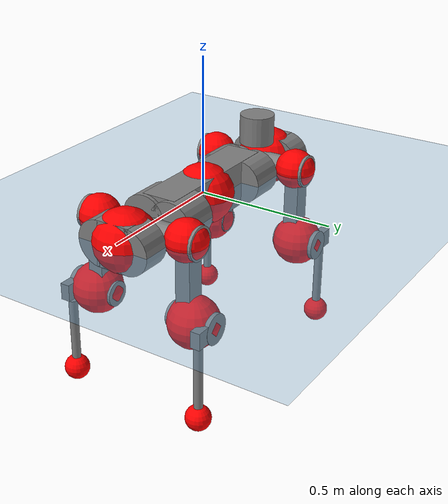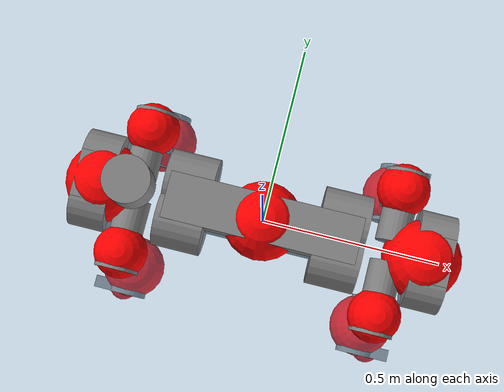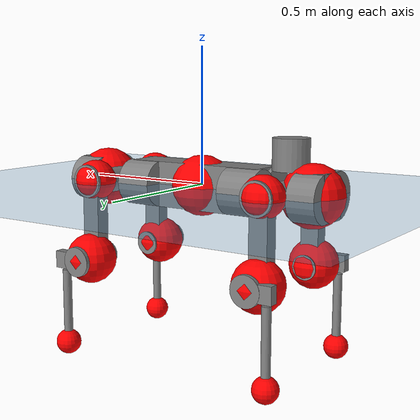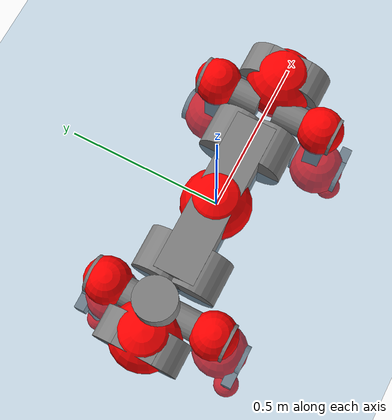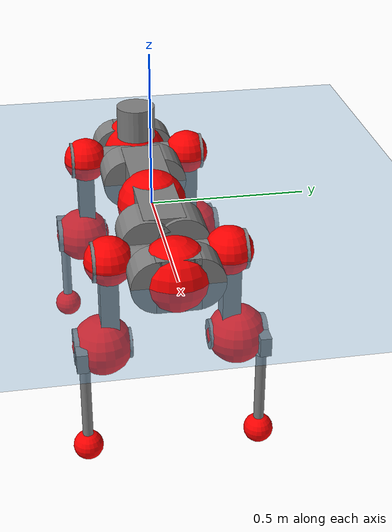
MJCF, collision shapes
<mujoco model="anymal_c">
  <compiler angle="radian" assetdir="assets" balanceinertia="true" inertiafromgeom="false"/>

  <option timestep="0.005" density="1.2" viscosity="2e-05"/>

  <size nkey="1"/>

  <visual>
    <quality shadowsize="8192"/>
    <map shadowclip="0.5"/>
  </visual>

  <default>
    <default class="/">
      <material specular="0" shininess="0.25"/>
      <geom contype="0" conaffinity="0" group="1" solref="-1000 -80"/>
      <site size="0.01 0.005 0.005" group="5"/>
      <general forcelimited="true" forcerange="-80 80" biastype="affine" gainprm="80" biasprm="0 -80 -2"/>
      <default class="anymal_c">
        <joint armature="0.01" damping="0.01" frictionloss="0.1"/>
        <default class="visual">
          <geom type="mesh" group="2"/>
          <default class="visual_zflip"/>
        </default>
        <default class="collision">
          <geom type="cylinder" group="3"/>
          <default class="foot">
            <geom size="0.03 0 0" type="sphere" condim="6" priority="1" friction="0.8 0.02 0.01" solimp="0.015 1 0.03"/>
          </default>
        </default>
      </default>
      <default class="reward_collision_sphere">
        <geom group="5" rgba="1 0 0 1"/>
      </default>
    </default>
  </default>

  <asset>
    <texture type="skybox" colorspace="auto" name="//unnamed_texture_0" builtin="gradient" rgb1="0.95 0.95 0.95" rgb2="0.95 0.95 0.95" width="100" height="600"/>
    <texture type="2d" colorspace="auto" name="texplane" builtin="checker" rgb1="0.345 0.575 0.748" rgb2="0.345 0.575 0.748" markrgb="1 1 1" width="512" height="512"/>
    <texture type="2d" colorspace="linear" name="base" file="base.png"/>
    <texture type="2d" colorspace="linear" name="top_shell" file="top_shell.png"/>
    <texture type="2d" colorspace="linear" name="bottom_shell" file="bottom_shell.png"/>
    <texture type="2d" colorspace="linear" name="remote" file="remote.png"/>
    <texture type="2d" colorspace="linear" name="hatch" file="hatch.png"/>
    <texture type="2d" colorspace="linear" name="handle" file="handle.png"/>
    <texture type="2d" colorspace="linear" name="face" file="face.png"/>
    <texture type="2d" colorspace="linear" name="battery" file="battery.png"/>
    <texture type="2d" colorspace="linear" name="lidar_cage" file="lidar_cage.png"/>
    <texture type="2d" colorspace="linear" name="depth_camera" file="depth_camera.png"/>
    <texture type="2d" colorspace="linear" name="wide_angle_camera" file="wide_angle_camera.png"/>
    <texture type="2d" colorspace="linear" name="lidar" file="lidar.png"/>
    <texture type="2d" colorspace="linear" name="drive" file="drive.png"/>
    <texture type="2d" colorspace="linear" name="hip_l" file="hip_l.png"/>
    <texture type="2d" colorspace="linear" name="shank_l" file="shank_l.png"/>
    <texture type="2d" colorspace="linear" name="foot" file="foot.png"/>
    <texture type="2d" colorspace="linear" name="thigh" file="thigh.png"/>
    <texture type="2d" colorspace="linear" name="shank_r" file="shank_r.png"/>
    <texture type="2d" colorspace="linear" name="hip_r" file="hip_r.png"/>
    <material name="MatPlane" class="/" texture="texplane" texuniform="true" texrepeat="2 2" specular="0.9" shininess="0.5"/>
    <material name="black_plastic" class="/" rgba="0.007 0.007 0.007 1"/>
    <material name="green" class="/" rgba="0.052 0.178 0.033 1"/>
    <material name="red" class="/" rgba="0.178 0.006 0.005 1"/>
    <material name="yellow" class="/" rgba="0.178 0.119 0.006 1"/>
    <material name="lwl" class="/" rgba="0.8 0.8 0.8 1"/>
    <material name="base" class="/" texture="base"/>
    <material name="top_shell" class="/" texture="top_shell"/>
    <material name="bottom_shell" class="/" texture="bottom_shell"/>
    <material name="hip_l" class="/" texture="hip_l"/>
    <material name="thigh" class="/" texture="thigh"/>
    <material name="shank_l" class="/" texture="shank_l"/>
    <material name="foot" class="/" texture="foot"/>
    <material name="hip_r" class="/" texture="hip_r"/>
    <material name="shank" class="/" texture="shank_r"/>
    <material name="hatch" class="/" texture="hatch"/>
    <material name="remote" class="/" texture="remote"/>
    <material name="handle" class="/" texture="handle"/>
    <material name="face" class="/" texture="face"/>
    <material name="depth_camera" class="/" texture="depth_camera"/>
    <material name="wide_angle_camera" class="/" texture="wide_angle_camera"/>
    <material name="battery" class="/" texture="battery"/>
    <material name="lidar_cage" class="/" texture="lidar_cage"/>
    <material name="lidar" class="/" texture="lidar"/>
    <material name="drive" class="/" texture="drive"/>
    <mesh name="base_0" class="/" file="base_0.obj"/>
    <mesh name="base_1" class="/" file="base_1.obj"/>
    <mesh name="base_2" class="/" file="base_2.obj"/>
    <mesh name="base_3" class="/" file="base_3.obj"/>
    <mesh name="base_4" class="/" file="base_4.obj"/>
    <mesh name="base_5" class="/" file="base_5.obj"/>
    <mesh name="top_shell" class="/" file="top_shell.obj"/>
    <mesh name="bottom_shell" class="/" file="bottom_shell.obj"/>
    <mesh name="remote" class="/" file="remote.obj"/>
    <mesh name="handle" class="/" file="handle.obj"/>
    <mesh name="face" class="/" file="face.obj"/>
    <mesh name="wide_angle_camera" class="/" file="wide_angle_camera.obj"/>
    <mesh name="depth_camera" class="/" file="depth_camera.obj"/>
    <mesh name="battery" class="/" file="battery.obj"/>
    <mesh name="lidar_cage" class="/" file="lidar_cage.obj"/>
    <mesh name="lidar" class="/" file="lidar.obj"/>
    <mesh name="drive" class="/" file="drive.obj"/>
    <mesh name="hip_l" class="/" file="hip_l.obj"/>
    <mesh name="thigh" class="/" file="thigh.obj"/>
    <mesh name="shank_l" class="/" file="shank_l.obj"/>
    <mesh name="foot" class="/" file="foot.obj"/>
    <mesh name="hip_r" class="/" file="hip_r.obj"/>
    <mesh name="hatch" class="/" file="hatch.obj"/>
    <mesh name="shank_r" class="/" file="shank_r.obj"/>
  </asset>

  <worldbody>
    <geom name="floor" class="/" size="100 100 0.125" type="plane" group="0" material="MatPlane"/>
    <light name="toplight_shadow" class="/" pos="0 0 5" dir="0.0990148 0.0990148 -0.990148" type="directional" ambient="0.04 0.04 0.04" diffuse="0.55 0.55 0.55" specular="0.12 0.12 0.12"/>
    <light name="toplight_fill" class="/" pos="0 0 5" dir="0.0990148 0.0990148 -0.990148" type="directional" castshadow="false" ambient="0.04 0.04 0.04" diffuse="0.3 0.3 0.3" specular="0.08 0.08 0.08"/>
    <body name="trunk" childclass="anymal_c" pos="-0.000549674 0.000285253 -0.00243264" quat="1 0.000280235 -0.000257241 -0.000139389">
      <inertial pos="-0.000384984 -0.00293382 0.0504314" quat="0.501102 0.499377 0.500103 0.499416" mass="15.8127" diaginertia="0.684042 0.181094 0.257953"/>
      <joint name="//unnamed_joint_0" type="free" armature="0" damping="0" frictionloss="0"/>
      <geom name="//unnamed_geom_1" class="visual" material="green" mesh="base_0"/>
      <geom name="//unnamed_geom_2" class="visual" material="yellow" mesh="base_1"/>
      <geom name="//unnamed_geom_3" class="visual" material="red" mesh="base_2"/>
      <geom name="//unnamed_geom_4" class="visual" material="black_plastic" mesh="base_3"/>
      <geom name="//unnamed_geom_5" class="visual" material="lwl" mesh="base_4"/>
      <geom name="//unnamed_geom_6" class="visual" material="base" mesh="base_5"/>
      <geom name="trunk_1" class="collision" size="0.271364 0.0655016 0.0842164" type="box"/>
      <geom name="trunk_2" class="collision" size="0.0842164 0.067841" pos="0.218917 0.0543117 0" quat="0.707107 0 0.707107 0"/>
      <geom name="trunk_3" class="collision" size="0.0842164 0.067841" pos="-0.218917 0.0543117 0" quat="0.707107 0 0.707107 0"/>
      <geom name="trunk_4" class="collision" size="0.0842164 0.067841" pos="0.218917 -0.0543117 0" quat="0.707107 0 0.707107 0"/>
      <geom name="trunk_5" class="collision" size="0.0842164 0.067841" pos="-0.218917 -0.0543117 0" quat="0.707107 0 0.707107 0"/>
      <geom name="//unnamed_geom_12" class="visual" material="top_shell" mesh="top_shell"/>
      <geom name="//unnamed_geom_13" class="visual" material="bottom_shell" mesh="bottom_shell"/>
      <geom name="//unnamed_geom_14" class="visual" material="remote" mesh="remote"/>
      <geom name="//unnamed_geom_15" class="visual" material="handle" mesh="handle"/>
      <geom name="//unnamed_geom_16" class="visual" pos="0.4172 0 0" quat="1 0 0 0" material="face" mesh="face"/>
      <geom name="trunk_6" class="collision" size="0.0514656 0.0655016 0.0842164" pos="0.472558 0 0" type="box"/>
      <geom name="//unnamed_geom_18" class="collision" size="0.0842164 0.0514656" pos="0.472558 0.0543117 0" quat="0.707107 0 0.707107 0"/>
      <geom name="//unnamed_geom_19" class="collision" size="0.0842164 0.0514656" pos="0.472558 -0.0543117 0" quat="0.707107 0 0.707107 0"/>
      <geom name="//unnamed_geom_20" class="visual" pos="0.464658 0 -0.0300638" quat="0.965926 0 0.258819 0" material="depth_camera" mesh="depth_camera"/>
      <geom name="//unnamed_geom_21" class="visual" pos="0.516341 0 0.0153415" material="wide_angle_camera" mesh="wide_angle_camera"/>
      <geom name="//unnamed_geom_22" class="visual_zflip" pos="-0.4172 0 0" quat="0 0 0 1" material="face" mesh="face"/>
      <geom name="trunk_7" class="collision" size="0.0514656 0.0655016 0.0842164" pos="-0.472558 0 0" quat="0 0 0 1" type="box"/>
      <geom name="//unnamed_geom_24" class="collision" size="0.0842164 0.0514656" pos="-0.472558 -0.0543117 0" quat="0 -0.707107 0 0.707107"/>
      <geom name="//unnamed_geom_25" class="collision" size="0.0842164 0.0514656" pos="-0.472558 0.0543117 0" quat="0 -0.707107 0 0.707107"/>
      <geom name="//unnamed_geom_26" class="visual" pos="-0.464658 0 -0.0300638" quat="0 -0.258819 0 0.965926" material="depth_camera" mesh="depth_camera"/>
      <geom name="//unnamed_geom_27" class="visual_zflip" pos="-0.516341 0 0.0153415" quat="0 0 0 1" material="wide_angle_camera" mesh="wide_angle_camera"/>
      <geom name="//unnamed_geom_28" class="visual" material="battery" mesh="battery"/>
      <geom name="//unnamed_geom_29" class="visual" pos="0 0.0562983 0.0296319" quat="0.683013 -0.183013 0.183013 0.683013" material="depth_camera" mesh="depth_camera"/>
      <geom name="//unnamed_geom_30" class="visual" pos="0 -0.0562983 0.0296319" quat="0.683013 0.183013 0.183013 -0.683013" material="depth_camera" mesh="depth_camera"/>
      <geom name="//unnamed_geom_31" class="visual" pos="-0.366371 0 0.0753241" quat="1 0 0 0" material="lidar_cage" mesh="lidar_cage"/>
      <geom name="trunk_8" class="collision" size="0.0655016 0.0561443" pos="-0.366371 0 0.136813"/>
      <geom name="//unnamed_geom_33" class="visual" pos="-0.366371 -9.06091e-05 0.145729" quat="0.707107 0 0 -0.707107" material="lidar" mesh="lidar"/>
      <geom name="//unnamed_geom_34" class="visual" pos="0.301853 0.0807801 -4.29419e-09" quat="0.258819 0.965926 0 0" material="drive" mesh="drive"/>
      <geom name="//unnamed_geom_35" class="visual" pos="0.301853 -0.0807801 4.29419e-09" quat="0.258819 -0.965926 0 0" material="drive" mesh="drive"/>
      <geom name="//unnamed_geom_36" class="visual" pos="-0.301853 0.0807801 4.29419e-09" quat="0 0 0.965926 -0.258819" material="drive" mesh="drive"/>
      <geom name="//unnamed_geom_37" class="visual" pos="-0.301853 -0.0807801 -4.29419e-09" quat="0 0 -0.965926 -0.258819" material="drive" mesh="drive"/>
      <geom name="//unnamed_geom_38" class="visual" pos="0.116756 0 0.0748117" quat="1 0 0 0" material="hatch" mesh="hatch"/>
      <geom name="//unnamed_geom_39" class="reward_collision_sphere" size="0.112289"/>
      <geom name="//unnamed_geom_40" class="reward_collision_sphere" size="0.112289" pos="0.452931 0 0"/>
      <geom name="//unnamed_geom_41" class="reward_collision_sphere" size="0.112289" pos="-0.452931 0 0"/>
      <site name="imu" pos="0.238245 0.0115189 0.0613208" size="0.00935738"/>
      <camera name="track" pos="0 -1.55176 0" quat="0.707107 0.707107 0 0" mode="trackcom"/>
      <camera name="ego_camera" pos="0.452931 0 -0.0409927" quat="-0.5 -0.5 0.5 0.5"/>
      <body name="LF_HIP" pos="0.301322 0.0818108 0.000790474" quat="0.259153 0.965836 0.000218902 0.000627055">
        <inertial pos="0.0598273 -0.012861 -0.00799761" quat="-0.131814 0.715615 -0.133547 0.672819" mass="2.19319" diaginertia="0.00582742 0.00137065 0.00370159"/>
        <joint name="LF_HAA" pos="0 0 0" axis="0.999872 -0.0156251 -0.00356445" range="-0.714576 0.519948" armature="0.0105854" damping="0" frictionloss="0.0985415"/>
        <geom name="//unnamed_geom_42" class="visual" pos="0 -0.000252608 4.14906e-05" quat="0.258819 -0.965926 0 0" material="hip_l" mesh="hip_l"/>
        <geom name="//unnamed_geom_43" class="visual" pos="0.0602901 -0.0701062 -0.0423171" quat="0.183013 -0.683013 0.683013 0.183013" material="drive" mesh="drive"/>
        <geom name="//unnamed_geom_44" class="collision" size="0.0467869 0.0655016" pos="0.0602901 -0.00927938 -0.00707637" quat="-0.353553 -0.612372 0.612372 -0.353553"/>
        <body name="LF_THIGH" pos="0.0603458 -0.0557591 -0.0446831" quat="0.183136 -0.68279 0.683113 0.183347">
          <inertial pos="0.0322813 0.000200784 -0.249019" quat="0.992906 -0.00373772 -0.0818163 0.0861981" mass="2.57676" diaginertia="0.0301476 0.00839428 0.00478882"/>
          <joint name="LF_HFE" pos="0 0 0" axis="0.999884 0.0118587 0.00958024" range="-3.13306 3.1163" armature="0.00890022" damping="0.0103327" frictionloss="0.0806234"/>
          <geom name="//unnamed_geom_45" class="visual" pos="0.00458867 7.23067e-06 0" quat="0.707107 0 0 -0.707107" material="thigh" mesh="thigh"/>
          <geom name="//unnamed_geom_46" class="collision" size="0.0608229 0.0374295" pos="0.0402605 0 0" quat="0.5 0.5 -0.5 -0.5"/>
          <geom name="//unnamed_geom_47" class="collision" size="0.0350902 0.0280721 0.132233" pos="0.0301954 0 -0.144821" quat="0.707107 0 0 -0.707107" type="box"/>
          <geom name="//unnamed_geom_48" class="visual" pos="0.100953 0 -0.292073" quat="1 0 0 0" material="drive" mesh="drive"/>
          <geom name="//unnamed_geom_49" class="collision" size="0.0467869 0.0655016" pos="0.0304973 0 -0.292073" quat="0.707107 0 0.707107 0"/>
          <geom name="//unnamed_geom_50" class="reward_collision_sphere" size="0.074859" pos="0.0251628 0 0"/>
          <body name="LF_SHANK" pos="0.104297 -0.00331246 -0.294785" quat="0.999999 -0.00028534 0.00139352 -9.12477e-05">
            <inertial pos="0.00637756 -0.0473509 -0.0819367" quat="0.993336 -0.11261 -0.000832647 -0.0245192" mass="0.470514" diaginertia="0.010262 0.00258237 0.00125384"/>
            <joint name="LF_KFE" pos="0 0 0" axis="1 0.000372806 3.70002e-05" range="-3.18707 3.14552" armature="0.0100361" damping="0" frictionloss="0.103591"/>
            <geom name="//unnamed_geom_51" class="visual" pos="0.00149627 0.00797816 0" quat="0.707107 0 0 -0.707107" material="shank_l" mesh="shank_l"/>
            <geom name="LF_kfe_act" class="collision" size="0.0561443 0.0187148" pos="0.0201303 0 0" quat="0.5 0.5 -0.5 -0.5"/>
            <geom name="//unnamed_geom_53" class="collision" size="0.053804 0.0315811 0.017779" pos="0.0201303 -0.0446124 0" quat="0.5 0.5 -0.5 -0.5" type="box"/>
            <geom name="//unnamed_geom_54" class="visual" pos="0.0131346 -0.0656677 -0.346358" quat="0.382683 0 0 -0.92388" material="foot" mesh="foot"/>
            <geom name="LF_calf" class="collision" size="0.0163754 0.132175" pos="0.013135 -0.0682387 -0.173179" quat="0.707107 0 0 -0.707107"/>
            <geom name="LF_foot" class="foot" size="0.0292308" pos="0.013135 -0.0682387 -0.323299" quat="0.707107 0 0 -0.707107"/>
            <geom name="//unnamed_geom_57" class="reward_collision_sphere" size="0.0935738" pos="-0.0503257 0 0"/>
            <geom name="//unnamed_geom_58" class="reward_collision_sphere" size="0.0467869" pos="0.013135 -0.0682387 -0.323299"/>
            <site name="LF_foot" class="foot" pos="0.013135 -0.0682387 -0.323299" quat="0.707107 0 0 -0.707107" size="0.00935738"/>
          </body>
        </body>
      </body>
      <body name="RF_HIP" pos="0.300449 -0.0822798 -0.00059455" quat="0.258755 -0.965943 8.17806e-05 6.09426e-06">
        <inertial pos="0.0599211 0.0130816 -0.00908214" quat="0.136589 0.677796 0.129472 0.710755" mass="2.35894" diaginertia="0.00614078 0.00145118 0.00382166"/>
        <joint name="RF_HAA" pos="0 0 0" axis="0.999994 0.00319165 0.000955842" range="-0.547181 0.702085" armature="0.00809571" damping="0.00817585" frictionloss="0.0805972"/>
        <geom name="//unnamed_geom_59" class="visual" pos="0 0.000252606 4.14905e-05" quat="0.258819 0.965926 0 0" material="hip_r" mesh="hip_r"/>
        <geom name="//unnamed_geom_60" class="visual" pos="0.0602901 0.0701062 -0.0423171" quat="0.183013 0.683013 0.683013 -0.183013" material="drive" mesh="drive"/>
        <geom name="//unnamed_geom_61" class="collision" size="0.0467869 0.0655016" pos="0.0602901 0.00927938 -0.00707637" quat="-0.353553 0.612372 0.612372 0.353553"/>
        <body name="RF_THIGH" pos="0.0599482 0.0591858 -0.0447737" quat="0.182742 0.683179 0.682869 -0.183198">
          <inertial pos="0.0312038 -0.00115965 -0.25077" quat="0.99311 -0.0177632 -0.0748401 0.0884044" mass="2.35144" diaginertia="0.0299767 0.00834445 0.00463497"/>
          <joint name="RF_HFE" pos="0 0 0" axis="0.999951 -0.00389782 0.00907528" stiffness="0.00549932" range="-3.09327 3.18719" armature="0.00938143" damping="0" frictionloss="0.103502"/>
          <geom name="//unnamed_geom_62" class="visual" pos="0.00458867 7.23067e-06 0" quat="0.707107 0 0 -0.707107" material="thigh" mesh="thigh"/>
          <geom name="//unnamed_geom_63" class="collision" size="0.0608229 0.0374295" pos="0.0402605 0 0" quat="0.5 0.5 0.5 0.5"/>
          <geom name="//unnamed_geom_64" class="collision" size="0.0350902 0.0280721 0.132233" pos="0.0301954 0 -0.144821" quat="0.707107 0 0 0.707107" type="box"/>
          <geom name="//unnamed_geom_65" class="visual" pos="0.100953 0 -0.292073" quat="1 0 0 0" material="drive" mesh="drive"/>
          <geom name="//unnamed_geom_66" class="collision" size="0.0467869 0.0655016" pos="0.0304973 0 -0.292073" quat="0.707107 0 0.707107 0"/>
          <geom name="//unnamed_geom_67" class="reward_collision_sphere" size="0.074859" pos="0.0251628 0 0"/>
          <body name="RF_SHANK" pos="0.103157 -0.00226507 -0.291341" quat="1 -0.000124943 3.23484e-05 -5.61939e-05">
            <inertial pos="0.00555608 0.0475211 -0.079731" quat="0.991896 0.12431 0.00269633 0.0261058" mass="0.488782" diaginertia="0.0101752 0.00251034 0.00126636"/>
            <joint name="RF_KFE" pos="0 0 0" axis="0.999998 0.000763323 -0.00178985" range="-3.16782 3.1779" armature="0.00945967" damping="0.00362224" frictionloss="0.0815057"/>
            <geom name="//unnamed_geom_68" class="visual" pos="0.00149626 -0.00797815 0" quat="0.707107 0 0 0.707107" material="shank" mesh="shank_r"/>
            <geom name="RF_kfe_act" class="collision" size="0.0561443 0.0187148" pos="0.0201303 0 0" quat="0.5 0.5 0.5 0.5"/>
            <geom name="//unnamed_geom_70" class="collision" size="0.053804 0.0315811 0.017779" pos="0.0201303 0.0446124 0" quat="0.5 0.5 0.5 0.5" type="box"/>
            <geom name="//unnamed_geom_71" class="visual" pos="0.0131354 0.0656677 -0.346358" quat="0.382683 0 0 0.92388" material="foot" mesh="foot"/>
            <geom name="RF_calf" class="collision" size="0.0163754 0.132175" pos="0.013135 0.0682387 -0.173179" quat="0.707107 0 0 0.707107"/>
            <geom name="RF_foot" class="foot" size="0.0266613" pos="0.013135 0.0682387 -0.323299" quat="0.707107 0 0 0.707107"/>
            <geom name="//unnamed_geom_74" class="reward_collision_sphere" size="0.0935738" pos="-0.0503257 0 0"/>
            <geom name="//unnamed_geom_75" class="reward_collision_sphere" size="0.0467869" pos="0.013135 0.0682387 -0.323299"/>
            <site name="RF_foot" class="foot" pos="0.013135 0.0682387 -0.323299" quat="0.707107 0 0 0.707107" size="0.00935738"/>
          </body>
        </body>
      </body>
      <body name="LH_HIP" pos="-0.303974 0.0818515 0.000723095" quat="0.000168665 3.48376e-05 0.965964 -0.258676">
        <inertial pos="0.058157 0.0143521 -0.00851" quat="0.129433 0.685548 0.128257 0.704855" mass="2.27066" diaginertia="0.0058372 0.00137785 0.00346526"/>
        <joint name="LH_HAA" pos="0 0 0" axis="0.999997 0.00214448 0.000972917" range="-0.489944 0.680499" armature="0.00792072" damping="0.00308016" frictionloss="0.0923584"/>
        <geom name="//unnamed_geom_76" class="visual" pos="0 0.000252606 4.14905e-05" quat="-0.258819 -0.965926 0 0" material="hip_r" mesh="hip_r"/>
        <geom name="//unnamed_geom_77" class="visual" pos="0.0602901 0.0701062 -0.0423171" quat="0.183013 0.683013 0.683013 -0.183013" material="drive" mesh="drive"/>
        <geom name="//unnamed_geom_78" class="collision" size="0.0467869 0.0655016" pos="0.0602901 0.00927938 -0.00707637" quat="-0.353553 0.612372 0.612372 0.353553"/>
        <body name="LH_THIGH" pos="0.0572397 0.0539398 -0.0429678" quat="0.18305 0.683026 0.683024 -0.182886">
          <inertial pos="0.031002 0.00261462 -0.250491" quat="0.992632 -0.00616897 -0.0803422 0.0904882" mass="2.50777" diaginertia="0.0311008 0.008174 0.00469812"/>
          <joint name="LH_HFE" pos="0 0 0" axis="0.999925 0.0116172 -0.00385095" stiffness="0.00479645" range="-3.14232 3.15511" armature="0.00870651" damping="0.00352877" frictionloss="0.0941668"/>
          <geom name="//unnamed_geom_79" class="visual" pos="0.00458867 7.23067e-06 0" quat="0.707107 0 0 -0.707107" material="thigh" mesh="thigh"/>
          <geom name="//unnamed_geom_80" class="collision" size="0.0608229 0.0374295" pos="0.0402605 0 0" quat="0.5 0.5 -0.5 -0.5"/>
          <geom name="//unnamed_geom_81" class="collision" size="0.0350902 0.0280721 0.132233" pos="0.0301954 0 -0.144821" quat="0.707107 0 0 -0.707107" type="box"/>
          <geom name="//unnamed_geom_82" class="visual" pos="0.100953 0 -0.292073" quat="1 0 0 0" material="drive" mesh="drive"/>
          <geom name="//unnamed_geom_83" class="collision" size="0.0467869 0.0655016" pos="0.0304973 0 -0.292073" quat="0.707107 0 0.707107 0"/>
          <geom name="//unnamed_geom_84" class="reward_collision_sphere" size="0.074859" pos="0.0251628 0 0"/>
          <body name="LH_SHANK" pos="0.0984403 -0.000555213 -0.292986" quat="1 0.00038891 0.00031131 -2.62769e-06">
            <inertial pos="0.0055625 0.0473018 -0.0829412" quat="0.993064 0.116447 0.00388298 0.0157938" mass="0.482611" diaginertia="0.0104786 0.00256853 0.00122724"/>
            <joint name="LH_KFE" pos="0 0 0" axis="0.999788 -0.010001 -0.0180142" range="-3.15205 3.13642" armature="0.00821145" damping="0.00559946" frictionloss="0.104128"/>
            <geom name="//unnamed_geom_85" class="visual" pos="0.00149626 -0.00797815 0" quat="-0.707107 0 0 -0.707107" material="shank" mesh="shank_r"/>
            <geom name="LH_kfe_act" class="collision" size="0.0561443 0.0187148" pos="0.0201303 0 0" quat="0.5 0.5 -0.5 -0.5"/>
            <geom name="//unnamed_geom_87" class="collision" size="0.053804 0.0315811 0.017779" pos="0.0201303 0.0446124 0" quat="0.5 0.5 -0.5 -0.5" type="box"/>
            <geom name="//unnamed_geom_88" class="visual" pos="0.0131354 0.0656677 -0.346358" quat="-0.382683 0 0 -0.92388" material="foot" mesh="foot"/>
            <geom name="LH_calf" class="collision" size="0.0163754 0.132175" pos="0.013135 0.0682387 -0.173179" quat="0.707107 0 0 -0.707107"/>
            <geom name="LH_foot" class="foot" size="0.0331119" pos="0.013135 0.0682387 -0.323299" quat="0.707107 0 0 -0.707107"/>
            <geom name="//unnamed_geom_91" class="reward_collision_sphere" size="0.0935738" pos="-0.0503257 0 0"/>
            <geom name="//unnamed_geom_92" class="reward_collision_sphere" size="0.0467869" pos="0.013135 0.0682387 -0.323299"/>
            <site name="LH_foot" class="foot" pos="0.013135 0.0682387 -0.323299" quat="0.707107 0 0 -0.707107" size="0.00935738"/>
          </body>
        </body>
      </body>
      <body name="RH_HIP" pos="-0.301496 -0.0838981 -0.000297184" quat="-0.000647448 -0.0010798 -0.966028 -0.258434">
        <inertial pos="0.0543148 -0.0124507 -0.00596559" quat="-0.1266 0.711633 -0.134739 0.677788" mass="2.23689" diaginertia="0.00595378 0.00135954 0.003539"/>
        <joint name="RH_HAA" pos="0 0 0" axis="0.999998 -0.00187086 0.000465404" range="-0.779195 0.542873" armature="0.00934503" damping="0" frictionloss="0.0925845"/>
        <geom name="//unnamed_geom_93" class="visual" pos="0 -0.000252608 4.14906e-05" quat="-0.258819 0.965926 0 0" material="hip_l" mesh="hip_l"/>
        <geom name="//unnamed_geom_94" class="visual" pos="0.0602901 -0.0701062 -0.0423171" quat="-0.183013 0.683013 -0.683013 -0.183013" material="drive" mesh="drive"/>
        <geom name="//unnamed_geom_95" class="collision" size="0.0467869 0.0655016" pos="0.0602901 -0.00927938 -0.00707637" quat="0.353553 0.612372 -0.612372 0.353553"/>
        <body name="RH_THIGH" pos="0.0597553 -0.0574802 -0.0412731" quat="-0.183313 0.683125 -0.682893 -0.182737">
          <inertial pos="0.0339147 0.000795884 -0.252686" quat="0.993179 -0.00526903 -0.0808521 0.0838515" mass="2.367" diaginertia="0.029308 0.0082066 0.00454208"/>
          <joint name="RH_HFE" pos="0 0 0" axis="0.99994 -0.00938729 -0.00562431" stiffness="0.0020383" range="-3.14286 3.14011" armature="0.00907709" damping="0.00703731" frictionloss="0.0932449"/>
          <geom name="//unnamed_geom_96" class="visual" pos="0.00458867 7.23067e-06 0" quat="0.707107 0 0 -0.707107" material="thigh" mesh="thigh"/>
          <geom name="//unnamed_geom_97" class="collision" size="0.0608229 0.0374295" pos="0.0402605 0 0" quat="0.5 0.5 0.5 0.5"/>
          <geom name="//unnamed_geom_98" class="collision" size="0.0350902 0.0280721 0.132233" pos="0.0301954 0 -0.144821" quat="0.707107 0 0 0.707107" type="box"/>
          <geom name="//unnamed_geom_99" class="visual" pos="0.100953 0 -0.292073" quat="1 0 0 0" material="drive" mesh="drive"/>
          <geom name="//unnamed_geom_100" class="collision" size="0.0467869 0.0655016" pos="0.0304973 0 -0.292073" quat="0.707107 0 0.707107 0"/>
          <geom name="//unnamed_geom_101" class="reward_collision_sphere" size="0.074859" pos="0.0251628 0 0"/>
          <body name="RH_SHANK" pos="0.0982307 0.00151245 -0.292152" quat="1 0.000352364 -0.000297088 0.000167745">
            <inertial pos="0.0052359 -0.0475854 -0.0827308" quat="0.994008 -0.104634 0.00445488 -0.0312895" mass="0.474654" diaginertia="0.0102218 0.00267468 0.00126426"/>
            <joint name="RH_KFE" pos="0 0 0" axis="0.999986 0.00477466 0.0022026" stiffness="0.00812792" range="-3.10967 3.13915" armature="0.00814404" damping="0.00570597" frictionloss="0.0932749"/>
            <geom name="//unnamed_geom_102" class="visual" pos="0.00149627 0.00797816 0" quat="0.707107 0 0 -0.707107" material="shank_l" mesh="shank_l"/>
            <geom name="RH_kfe_act" class="collision" size="0.0561443 0.0187148" pos="0.0201303 0 0" quat="0.5 0.5 0.5 0.5"/>
            <geom name="//unnamed_geom_104" class="collision" size="0.053804 0.0315811 0.017779" pos="0.0201303 -0.0446124 0" quat="0.5 0.5 0.5 0.5" type="box"/>
            <geom name="//unnamed_geom_105" class="visual" pos="0.0131346 -0.0656677 -0.346358" quat="0.382683 0 0 -0.92388" material="foot" mesh="foot"/>
            <geom name="RH_calf" class="collision" size="0.0163754 0.132175" pos="0.013135 -0.0682387 -0.173179" quat="0.707107 0 0 0.707107"/>
            <geom name="RH_foot" class="foot" size="0.0233258" pos="0.013135 -0.0682387 -0.323299" quat="0.707107 0 0 0.707107"/>
            <geom name="//unnamed_geom_108" class="reward_collision_sphere" size="0.0935738" pos="-0.0503257 0 0"/>
            <geom name="//unnamed_geom_109" class="reward_collision_sphere" size="0.0467869" pos="0.013135 -0.0682387 -0.323299"/>
            <site name="RH_foot" class="foot" pos="0.013135 -0.0682387 -0.323299" quat="0.707107 0 0 0.707107" size="0.00935738"/>
          </body>
        </body>
      </body>
    </body>
  </worldbody>

  <contact>
    <pair class="/" geom1="floor" geom2="LF_foot" name="//unnamed_contact_0"/>
    <pair class="/" geom1="floor" geom2="RF_foot" name="//unnamed_contact_1"/>
    <pair class="/" geom1="floor" geom2="LH_foot" name="//unnamed_contact_2"/>
    <pair class="/" geom1="floor" geom2="RH_foot" name="//unnamed_contact_3"/>
  </contact>

  <actuator>
    <general name="LF_HAA" class="/" joint="LF_HAA" forcerange="-78.5907 78.5907" gainprm="77.8171" biasprm="0 -77.8171 -1.78755"/>
    <general name="LF_HFE" class="/" joint="LF_HFE" forcerange="-70.345 70.345" gainprm="77.8171" biasprm="0 -77.8171 -1.78755"/>
    <general name="LF_KFE" class="/" joint="LF_KFE" forcerange="-77.0607 77.0607" gainprm="77.8171" biasprm="0 -77.8171 -1.78755"/>
    <general name="RF_HAA" class="/" joint="RF_HAA" forcerange="-70.0462 70.0462" gainprm="77.8171" biasprm="0 -77.8171 -1.78755"/>
    <general name="RF_HFE" class="/" joint="RF_HFE" forcerange="-80.5746 80.5746" gainprm="77.8171" biasprm="0 -77.8171 -1.78755"/>
    <general name="RF_KFE" class="/" joint="RF_KFE" forcerange="-67.4053 67.4053" gainprm="77.8171" biasprm="0 -77.8171 -1.78755"/>
    <general name="LH_HAA" class="/" joint="LH_HAA" forcerange="-74.9723 74.9723" gainprm="77.8171" biasprm="0 -77.8171 -1.78755"/>
    <general name="LH_HFE" class="/" joint="LH_HFE" forcerange="-67.5253 67.5253" gainprm="77.8171" biasprm="0 -77.8171 -1.78755"/>
    <general name="LH_KFE" class="/" joint="LH_KFE" forcerange="-77.6147 77.6147" gainprm="77.8171" biasprm="0 -77.8171 -1.78755"/>
    <general name="RH_HAA" class="/" joint="RH_HAA" forcerange="-76.2433 76.2433" gainprm="77.8171" biasprm="0 -77.8171 -1.78755"/>
    <general name="RH_HFE" class="/" joint="RH_HFE" forcerange="-68.2076 68.2076" gainprm="77.8171" biasprm="0 -77.8171 -1.78755"/>
    <general name="RH_KFE" class="/" joint="RH_KFE" forcerange="-83.0012 83.0012" gainprm="77.8171" biasprm="0 -77.8171 -1.78755"/>
  </actuator>

  <sensor>
    <gyro site="imu" name="imu_angular_velocity"/>
    <velocimeter site="imu" name="imu_linear_velocity"/>
    <framelinvel objtype="site" objname="LF_foot" name="LF_foot_global_linear_velocity"/>
    <framelinvel objtype="site" objname="RF_foot" name="RF_foot_global_linear_velocity"/>
    <framelinvel objtype="site" objname="LH_foot" name="LH_foot_global_linear_velocity"/>
    <framelinvel objtype="site" objname="RH_foot" name="RH_foot_global_linear_velocity"/>
  </sensor>

  <keyframe>
    <key name="home" qpos="0 0 0.55 1 0 0 0 0 0.4 -0.8 0 -0.4 0.8 0 -0.4 0.8 0 0.4 -0.8"/>
  </keyframe>
</mujoco>
